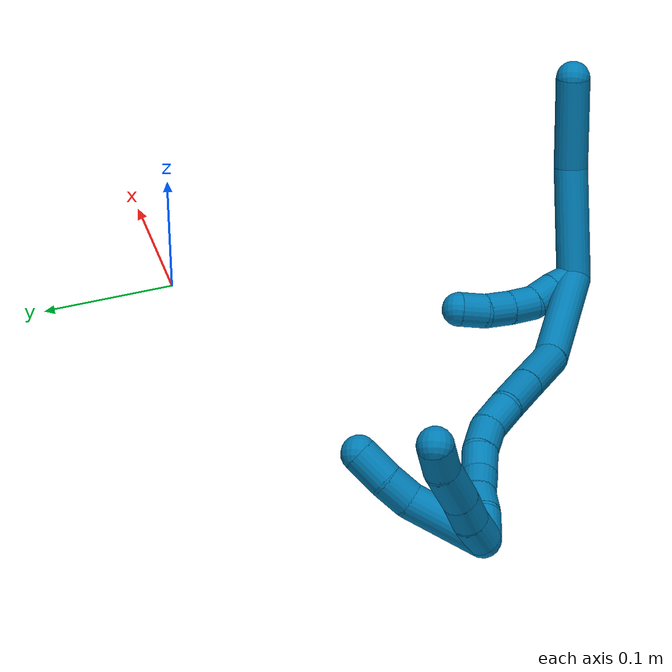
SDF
<sdf version="1.7">
 <world name="default">
  <model name="9">
   <static>0</static>
   <link name="9">
    <collision name="collision-cylinder-e_1_2_8">
     <pose>0.006923 0.013573 0.038186 -0.341517 0.16919 -0.029242</pose>
     <geometry><cylinder><radius>0.0125</radius><length>0.082226</length></cylinder></geometry>
     <surface>
      <friction><ode><mu>1.16</mu><mu2>1.16</mu2><slip1>0</slip1><slip2>0</slip2></ode></friction>
      <contact><ode><kp>1e+06</kp><kd>1</kd><max_vel>0</max_vel><min_depth>0.001</min_depth></ode></contact>
     </surface>
    </collision>
    <visual name="visual-cylinder-e_1_2_8">
     <pose>0.006923 0.013573 0.038186 -0.341517 0.16919 -0.029242</pose>
     <geometry><cylinder><radius>0.0125</radius><length>0.082226</length></cylinder></geometry>
     <material><ambient>0 0.490196 0.709804 1</ambient></material>
    </visual>
    <collision name="collision-cylinder-e_2_8_6">
     <pose>0.019879 0.045821 0.103996 -0.594453 0.178996 -0.05496</pose>
     <geometry><cylinder><radius>0.0125</radius><length>0.067774</length></cylinder></geometry>
     <surface>
      <friction><ode><mu>1.16</mu><mu2>1.16</mu2><slip1>0</slip1><slip2>0</slip2></ode></friction>
      <contact><ode><kp>1e+06</kp><kd>1</kd><max_vel>0</max_vel><min_depth>0.001</min_depth></ode></contact>
     </surface>
    </collision>
    <visual name="visual-cylinder-e_2_8_6">
     <pose>0.019879 0.045821 0.103996 -0.594453 0.178996 -0.05496</pose>
     <geometry><cylinder><radius>0.0125</radius><length>0.067774</length></cylinder></geometry>
     <material><ambient>0 0.490196 0.709804 1</ambient></material>
    </visual>
    <collision name="collision-cylinder-e_1_2_9">
     <pose>0.008295 0.000952 -0.005504 -2.97029 0.978163 -2.82168</pose>
     <geometry><cylinder><radius>0.0125</radius><length>0.02</length></cylinder></geometry>
     <surface>
      <friction><ode><mu>1.16</mu><mu2>1.16</mu2><slip1>0</slip1><slip2>0</slip2></ode></friction>
      <contact><ode><kp>1e+06</kp><kd>1</kd><max_vel>0</max_vel><min_depth>0.001</min_depth></ode></contact>
     </surface>
    </collision>
    <visual name="visual-cylinder-e_1_2_9">
     <pose>0.008295 0.000952 -0.005504 -2.97029 0.978163 -2.82168</pose>
     <geometry><cylinder><radius>0.0125</radius><length>0.02</length></cylinder></geometry>
     <material><ambient>0 0.490196 0.709804 1</ambient></material>
    </visual>
    <collision name="collision-cylinder-e_2_9_10">
     <pose>0.024042 0.003825 -0.017393 -2.84936 0.840907 -2.50563</pose>
     <geometry><cylinder><radius>0.0125</radius><length>0.02</length></cylinder></geometry>
     <surface>
      <friction><ode><mu>1.16</mu><mu2>1.16</mu2><slip1>0</slip1><slip2>0</slip2></ode></friction>
      <contact><ode><kp>1e+06</kp><kd>1</kd><max_vel>0</max_vel><min_depth>0.001</min_depth></ode></contact>
     </surface>
    </collision>
    <visual name="visual-cylinder-e_2_9_10">
     <pose>0.024042 0.003825 -0.017393 -2.84936 0.840907 -2.50563</pose>
     <geometry><cylinder><radius>0.0125</radius><length>0.02</length></cylinder></geometry>
     <material><ambient>0 0.490196 0.709804 1</ambient></material>
    </visual>
    <collision name="collision-cylinder-e_3_10_11">
     <pose>0.040766 0.007119 -0.027264 -2.76646 1.18678 -2.59298</pose>
     <geometry><cylinder><radius>0.0125</radius><length>0.02</length></cylinder></geometry>
     <surface>
      <friction><ode><mu>1.16</mu><mu2>1.16</mu2><slip1>0</slip1><slip2>0</slip2></ode></friction>
      <contact><ode><kp>1e+06</kp><kd>1</kd><max_vel>0</max_vel><min_depth>0.001</min_depth></ode></contact>
     </surface>
    </collision>
    <visual name="visual-cylinder-e_3_10_11">
     <pose>0.040766 0.007119 -0.027264 -2.76646 1.18678 -2.59298</pose>
     <geometry><cylinder><radius>0.0125</radius><length>0.02</length></cylinder></geometry>
     <material><ambient>0 0.490196 0.709804 1</ambient></material>
    </visual>
    <collision name="collision-cylinder-e_4_11_12">
     <pose>0.059422 0.010431 -0.03361 -2.54579 1.21798 -2.31216</pose>
     <geometry><cylinder><radius>0.0125</radius><length>0.02</length></cylinder></geometry>
     <surface>
      <friction><ode><mu>1.16</mu><mu2>1.16</mu2><slip1>0</slip1><slip2>0</slip2></ode></friction>
      <contact><ode><kp>1e+06</kp><kd>1</kd><max_vel>0</max_vel><min_depth>0.001</min_depth></ode></contact>
     </surface>
    </collision>
    <visual name="visual-cylinder-e_4_11_12">
     <pose>0.059422 0.010431 -0.03361 -2.54579 1.21798 -2.31216</pose>
     <geometry><cylinder><radius>0.0125</radius><length>0.02</length></cylinder></geometry>
     <material><ambient>0 0.490196 0.709804 1</ambient></material>
    </visual>
    <collision name="collision-cylinder-e_5_12_5">
     <pose>0.078749 0.013166 -0.03718 -2.29946 1.46389 -2.21673</pose>
     <geometry><cylinder><radius>0.0125</radius><length>0.02</length></cylinder></geometry>
     <surface>
      <friction><ode><mu>1.16</mu><mu2>1.16</mu2><slip1>0</slip1><slip2>0</slip2></ode></friction>
      <contact><ode><kp>1e+06</kp><kd>1</kd><max_vel>0</max_vel><min_depth>0.001</min_depth></ode></contact>
     </surface>
    </collision>
    <visual name="visual-cylinder-e_5_12_5">
     <pose>0.078749 0.013166 -0.03718 -2.29946 1.46389 -2.21673</pose>
     <geometry><cylinder><radius>0.0125</radius><length>0.02</length></cylinder></geometry>
     <material><ambient>0 0.490196 0.709804 1</ambient></material>
    </visual>
    <collision name="collision-cylinder-e_1_2_13">
     <pose>0.014127 0.024439 -0.037908 -2.56896 0.303538 -0.958253</pose>
     <geometry><cylinder><radius>0.0125</radius><length>0.094528</length></cylinder></geometry>
     <surface>
      <friction><ode><mu>1.16</mu><mu2>1.16</mu2><slip1>0</slip1><slip2>0</slip2></ode></friction>
      <contact><ode><kp>1e+06</kp><kd>1</kd><max_vel>0</max_vel><min_depth>0.001</min_depth></ode></contact>
     </surface>
    </collision>
    <visual name="visual-cylinder-e_1_2_13">
     <pose>0.014127 0.024439 -0.037908 -2.56896 0.303538 -0.958253</pose>
     <geometry><cylinder><radius>0.0125</radius><length>0.094528</length></cylinder></geometry>
     <material><ambient>0 0.490196 0.709804 1</ambient></material>
    </visual>
    <collision name="collision-cylinder-e_2_13_14">
     <pose>0.040025 0.060736 -0.089623 -2.432 0.574095 -1.34559</pose>
     <geometry><cylinder><radius>0.0125</radius><length>0.043349</length></cylinder></geometry>
     <surface>
      <friction><ode><mu>1.16</mu><mu2>1.16</mu2><slip1>0</slip1><slip2>0</slip2></ode></friction>
      <contact><ode><kp>1e+06</kp><kd>1</kd><max_vel>0</max_vel><min_depth>0.001</min_depth></ode></contact>
     </surface>
    </collision>
    <visual name="visual-cylinder-e_2_13_14">
     <pose>0.040025 0.060736 -0.089623 -2.432 0.574095 -1.34559</pose>
     <geometry><cylinder><radius>0.0125</radius><length>0.043349</length></cylinder></geometry>
     <material><ambient>0 0.490196 0.709804 1</ambient></material>
    </visual>
    <collision name="collision-cylinder-e_3_14_15">
     <pose>0.060844 0.081546 -0.114246 -2.4502 0.572454 -1.37024</pose>
     <geometry><cylinder><radius>0.0125</radius><length>0.033406</length></cylinder></geometry>
     <surface>
      <friction><ode><mu>1.16</mu><mu2>1.16</mu2><slip1>0</slip1><slip2>0</slip2></ode></friction>
      <contact><ode><kp>1e+06</kp><kd>1</kd><max_vel>0</max_vel><min_depth>0.001</min_depth></ode></contact>
     </surface>
    </collision>
    <visual name="visual-cylinder-e_3_14_15">
     <pose>0.060844 0.081546 -0.114246 -2.4502 0.572454 -1.37024</pose>
     <geometry><cylinder><radius>0.0125</radius><length>0.033406</length></cylinder></geometry>
     <material><ambient>0 0.490196 0.709804 1</ambient></material>
    </visual>
    <collision name="collision-cylinder-e_4_15_16">
     <pose>0.076799 0.094214 -0.134164 -2.75399 0.612428 -2.03047</pose>
     <geometry><cylinder><radius>0.0125</radius><length>0.024031</length></cylinder></geometry>
     <surface>
      <friction><ode><mu>1.16</mu><mu2>1.16</mu2><slip1>0</slip1><slip2>0</slip2></ode></friction>
      <contact><ode><kp>1e+06</kp><kd>1</kd><max_vel>0</max_vel><min_depth>0.001</min_depth></ode></contact>
     </surface>
    </collision>
    <visual name="visual-cylinder-e_4_15_16">
     <pose>0.076799 0.094214 -0.134164 -2.75399 0.612428 -2.03047</pose>
     <geometry><cylinder><radius>0.0125</radius><length>0.024031</length></cylinder></geometry>
     <material><ambient>0 0.490196 0.709804 1</ambient></material>
    </visual>
    <collision name="collision-cylinder-e_5_16_17">
     <pose>0.087258 0.103508 -0.152882 -2.61592 0.309247 -1.05012</pose>
     <geometry><cylinder><radius>0.0125</radius><length>0.023341</length></cylinder></geometry>
     <surface>
      <friction><ode><mu>1.16</mu><mu2>1.16</mu2><slip1>0</slip1><slip2>0</slip2></ode></friction>
      <contact><ode><kp>1e+06</kp><kd>1</kd><max_vel>0</max_vel><min_depth>0.001</min_depth></ode></contact>
     </surface>
    </collision>
    <visual name="visual-cylinder-e_5_16_17">
     <pose>0.087258 0.103508 -0.152882 -2.61592 0.309247 -1.05012</pose>
     <geometry><cylinder><radius>0.0125</radius><length>0.023341</length></cylinder></geometry>
     <material><ambient>0 0.490196 0.709804 1</ambient></material>
    </visual>
    <collision name="collision-cylinder-e_6_17_18">
     <pose>0.091575 0.11313 -0.17174 -2.72919 0.075758 -0.35846</pose>
     <geometry><cylinder><radius>0.0125</radius><length>0.020233</length></cylinder></geometry>
     <surface>
      <friction><ode><mu>1.16</mu><mu2>1.16</mu2><slip1>0</slip1><slip2>0</slip2></ode></friction>
      <contact><ode><kp>1e+06</kp><kd>1</kd><max_vel>0</max_vel><min_depth>0.001</min_depth></ode></contact>
     </surface>
    </collision>
    <visual name="visual-cylinder-e_6_17_18">
     <pose>0.091575 0.11313 -0.17174 -2.72919 0.075758 -0.35846</pose>
     <geometry><cylinder><radius>0.0125</radius><length>0.020233</length></cylinder></geometry>
     <material><ambient>0 0.490196 0.709804 1</ambient></material>
    </visual>
    <collision name="collision-cylinder-e_7_18_19">
     <pose>0.094092 0.123373 -0.188817 -2.47216 0.173442 -0.489893</pose>
     <geometry><cylinder><radius>0.0125</radius><length>0.020288</length></cylinder></geometry>
     <surface>
      <friction><ode><mu>1.16</mu><mu2>1.16</mu2><slip1>0</slip1><slip2>0</slip2></ode></friction>
      <contact><ode><kp>1e+06</kp><kd>1</kd><max_vel>0</max_vel><min_depth>0.001</min_depth></ode></contact>
     </surface>
    </collision>
    <visual name="visual-cylinder-e_7_18_19">
     <pose>0.094092 0.123373 -0.188817 -2.47216 0.173442 -0.489893</pose>
     <geometry><cylinder><radius>0.0125</radius><length>0.020288</length></cylinder></geometry>
     <material><ambient>0 0.490196 0.709804 1</ambient></material>
    </visual>
    <collision name="collision-cylinder-e_8_19_20">
     <pose>0.095492 0.136011 -0.204583 -2.45974 -0.034288 0.096581</pose>
     <geometry><cylinder><radius>0.0125</radius><length>0.020442</length></cylinder></geometry>
     <surface>
      <friction><ode><mu>1.16</mu><mu2>1.16</mu2><slip1>0</slip1><slip2>0</slip2></ode></friction>
      <contact><ode><kp>1e+06</kp><kd>1</kd><max_vel>0</max_vel><min_depth>0.001</min_depth></ode></contact>
     </surface>
    </collision>
    <visual name="visual-cylinder-e_8_19_20">
     <pose>0.095492 0.136011 -0.204583 -2.45974 -0.034288 0.096581</pose>
     <geometry><cylinder><radius>0.0125</radius><length>0.020442</length></cylinder></geometry>
     <material><ambient>0 0.490196 0.709804 1</ambient></material>
    </visual>
    <collision name="collision-cylinder-e_9_20_1">
     <pose>0.09562 0.147076 -0.221582 -2.66985 0.046992 -0.194935</pose>
     <geometry><cylinder><radius>0.0125</radius><length>0.020383</length></cylinder></geometry>
     <surface>
      <friction><ode><mu>1.16</mu><mu2>1.16</mu2><slip1>0</slip1><slip2>0</slip2></ode></friction>
      <contact><ode><kp>1e+06</kp><kd>1</kd><max_vel>0</max_vel><min_depth>0.001</min_depth></ode></contact>
     </surface>
    </collision>
    <visual name="visual-cylinder-e_9_20_1">
     <pose>0.09562 0.147076 -0.221582 -2.66985 0.046992 -0.194935</pose>
     <geometry><cylinder><radius>0.0125</radius><length>0.020383</length></cylinder></geometry>
     <material><ambient>0 0.490196 0.709804 1</ambient></material>
    </visual>
    <collision name="collision-cylinder-e_1_1_21">
     <pose>0.102735 0.1594 -0.226496 -1.07596 0.64899 -0.39617</pose>
     <geometry><cylinder><radius>0.0125</radius><length>0.02196</length></cylinder></geometry>
     <surface>
      <friction><ode><mu>1.16</mu><mu2>1.16</mu2><slip1>0</slip1><slip2>0</slip2></ode></friction>
      <contact><ode><kp>1e+06</kp><kd>1</kd><max_vel>0</max_vel><min_depth>0.001</min_depth></ode></contact>
     </surface>
    </collision>
    <visual name="visual-cylinder-e_1_1_21">
     <pose>0.102735 0.1594 -0.226496 -1.07596 0.64899 -0.39617</pose>
     <geometry><cylinder><radius>0.0125</radius><length>0.02196</length></cylinder></geometry>
     <material><ambient>0 0.490196 0.709804 1</ambient></material>
    </visual>
    <collision name="collision-cylinder-e_2_21_22">
     <pose>0.115065 0.174874 -0.217394 -1.00404 0.553426 -0.309299</pose>
     <geometry><cylinder><radius>0.0125</radius><length>0.021668</length></cylinder></geometry>
     <surface>
      <friction><ode><mu>1.16</mu><mu2>1.16</mu2><slip1>0</slip1><slip2>0</slip2></ode></friction>
      <contact><ode><kp>1e+06</kp><kd>1</kd><max_vel>0</max_vel><min_depth>0.001</min_depth></ode></contact>
     </surface>
    </collision>
    <visual name="visual-cylinder-e_2_21_22">
     <pose>0.115065 0.174874 -0.217394 -1.00404 0.553426 -0.309299</pose>
     <geometry><cylinder><radius>0.0125</radius><length>0.021668</length></cylinder></geometry>
     <material><ambient>0 0.490196 0.709804 1</ambient></material>
    </visual>
    <collision name="collision-cylinder-e_3_22_23">
     <pose>0.130203 0.194901 -0.206049 -1.08962 0.599435 -0.370243</pose>
     <geometry><cylinder><radius>0.0125</radius><length>0.033477</length></cylinder></geometry>
     <surface>
      <friction><ode><mu>1.16</mu><mu2>1.16</mu2><slip1>0</slip1><slip2>0</slip2></ode></friction>
      <contact><ode><kp>1e+06</kp><kd>1</kd><max_vel>0</max_vel><min_depth>0.001</min_depth></ode></contact>
     </surface>
    </collision>
    <visual name="visual-cylinder-e_3_22_23">
     <pose>0.130203 0.194901 -0.206049 -1.08962 0.599435 -0.370243</pose>
     <geometry><cylinder><radius>0.0125</radius><length>0.033477</length></cylinder></geometry>
     <material><ambient>0 0.490196 0.709804 1</ambient></material>
    </visual>
    <collision name="collision-cylinder-e_4_23_4">
     <pose>0.144337 0.215859 -0.193888 -0.985966 0.422162 -0.229217</pose>
     <geometry><cylinder><radius>0.0125</radius><length>0.022894</length></cylinder></geometry>
     <surface>
      <friction><ode><mu>1.16</mu><mu2>1.16</mu2><slip1>0</slip1><slip2>0</slip2></ode></friction>
      <contact><ode><kp>1e+06</kp><kd>1</kd><max_vel>0</max_vel><min_depth>0.001</min_depth></ode></contact>
     </surface>
    </collision>
    <visual name="visual-cylinder-e_4_23_4">
     <pose>0.144337 0.215859 -0.193888 -0.985966 0.422162 -0.229217</pose>
     <geometry><cylinder><radius>0.0125</radius><length>0.022894</length></cylinder></geometry>
     <material><ambient>0 0.490196 0.709804 1</ambient></material>
    </visual>
    <collision name="collision-cylinder-e_1_1_24">
     <pose>0.120976 0.14898 -0.219838 0.24665 1.14945 0.160216</pose>
     <geometry><cylinder><radius>0.0125</radius><length>0.054524</length></cylinder></geometry>
     <surface>
      <friction><ode><mu>1.16</mu><mu2>1.16</mu2><slip1>0</slip1><slip2>0</slip2></ode></friction>
      <contact><ode><kp>1e+06</kp><kd>1</kd><max_vel>0</max_vel><min_depth>0.001</min_depth></ode></contact>
     </surface>
    </collision>
    <visual name="visual-cylinder-e_1_1_24">
     <pose>0.120976 0.14898 -0.219838 0.24665 1.14945 0.160216</pose>
     <geometry><cylinder><radius>0.0125</radius><length>0.054524</length></cylinder></geometry>
     <material><ambient>0 0.490196 0.709804 1</ambient></material>
    </visual>
    <collision name="collision-cylinder-e_2_24_25">
     <pose>0.154498 0.147247 -0.203381 -0.173602 0.985319 -0.093358</pose>
     <geometry><cylinder><radius>0.0125</radius><length>0.020743</length></cylinder></geometry>
     <surface>
      <friction><ode><mu>1.16</mu><mu2>1.16</mu2><slip1>0</slip1><slip2>0</slip2></ode></friction>
      <contact><ode><kp>1e+06</kp><kd>1</kd><max_vel>0</max_vel><min_depth>0.001</min_depth></ode></contact>
     </surface>
    </collision>
    <visual name="visual-cylinder-e_2_24_25">
     <pose>0.154498 0.147247 -0.203381 -0.173602 0.985319 -0.093358</pose>
     <geometry><cylinder><radius>0.0125</radius><length>0.020743</length></cylinder></geometry>
     <material><ambient>0 0.490196 0.709804 1</ambient></material>
    </visual>
    <collision name="collision-cylinder-e_3_25_3">
     <pose>0.17265 0.148143 -0.189828 0.01189 0.87694 0.005576</pose>
     <geometry><cylinder><radius>0.0125</radius><length>0.024733</length></cylinder></geometry>
     <surface>
      <friction><ode><mu>1.16</mu><mu2>1.16</mu2><slip1>0</slip1><slip2>0</slip2></ode></friction>
      <contact><ode><kp>1e+06</kp><kd>1</kd><max_vel>0</max_vel><min_depth>0.001</min_depth></ode></contact>
     </surface>
    </collision>
    <visual name="visual-cylinder-e_3_25_3">
     <pose>0.17265 0.148143 -0.189828 0.01189 0.87694 0.005576</pose>
     <geometry><cylinder><radius>0.0125</radius><length>0.024733</length></cylinder></geometry>
     <material><ambient>0 0.490196 0.709804 1</ambient></material>
    </visual>
    <collision name="collision-sphere-3">
     <pose>0.182157 0.148049 -0.18192 0 -0 0</pose>
     <geometry><sphere><radius>0.0125</radius></sphere></geometry>
     <surface>
      <friction><ode><mu>1.16</mu><mu2>1.16</mu2><slip1>0</slip1><slip2>0</slip2></ode></friction>
      <contact><ode><kp>1e+06</kp><kd>1</kd><max_vel>0</max_vel><min_depth>0.001</min_depth></ode></contact>
     </surface>
    </collision>
    <visual name="visual-sphere-3">
     <pose>0.182157 0.148049 -0.18192 0 -0 0</pose>
     <geometry><sphere><radius>0.0125</radius></sphere></geometry>
     <material><ambient>0 0.490196 0.709804 1</ambient></material>
    </visual>
    <collision name="collision-sphere-25">
     <pose>0.163143 0.148237 -0.197735 0 -0 0</pose>
     <geometry><sphere><radius>0.0125</radius></sphere></geometry>
     <surface>
      <friction><ode><mu>1.16</mu><mu2>1.16</mu2><slip1>0</slip1><slip2>0</slip2></ode></friction>
      <contact><ode><kp>1e+06</kp><kd>1</kd><max_vel>0</max_vel><min_depth>0.001</min_depth></ode></contact>
     </surface>
    </collision>
    <visual name="visual-sphere-25">
     <pose>0.163143 0.148237 -0.197735 0 -0 0</pose>
     <geometry><sphere><radius>0.0125</radius></sphere></geometry>
     <material><ambient>0 0.490196 0.709804 1</ambient></material>
    </visual>
    <collision name="collision-sphere-24">
     <pose>0.145854 0.146257 -0.209026 0 -0 0</pose>
     <geometry><sphere><radius>0.0125</radius></sphere></geometry>
     <surface>
      <friction><ode><mu>1.16</mu><mu2>1.16</mu2><slip1>0</slip1><slip2>0</slip2></ode></friction>
      <contact><ode><kp>1e+06</kp><kd>1</kd><max_vel>0</max_vel><min_depth>0.001</min_depth></ode></contact>
     </surface>
    </collision>
    <visual name="visual-sphere-24">
     <pose>0.145854 0.146257 -0.209026 0 -0 0</pose>
     <geometry><sphere><radius>0.0125</radius></sphere></geometry>
     <material><ambient>0 0.490196 0.709804 1</ambient></material>
    </visual>
    <collision name="collision-sphere-4">
     <pose>0.149028 0.224566 -0.188123 0 -0 0</pose>
     <geometry><sphere><radius>0.0125</radius></sphere></geometry>
     <surface>
      <friction><ode><mu>1.16</mu><mu2>1.16</mu2><slip1>0</slip1><slip2>0</slip2></ode></friction>
      <contact><ode><kp>1e+06</kp><kd>1</kd><max_vel>0</max_vel><min_depth>0.001</min_depth></ode></contact>
     </surface>
    </collision>
    <visual name="visual-sphere-4">
     <pose>0.149028 0.224566 -0.188123 0 -0 0</pose>
     <geometry><sphere><radius>0.0125</radius></sphere></geometry>
     <material><ambient>0 0.490196 0.709804 1</ambient></material>
    </visual>
    <collision name="collision-sphere-23">
     <pose>0.139647 0.207152 -0.199652 0 -0 0</pose>
     <geometry><sphere><radius>0.0125</radius></sphere></geometry>
     <surface>
      <friction><ode><mu>1.16</mu><mu2>1.16</mu2><slip1>0</slip1><slip2>0</slip2></ode></friction>
      <contact><ode><kp>1e+06</kp><kd>1</kd><max_vel>0</max_vel><min_depth>0.001</min_depth></ode></contact>
     </surface>
    </collision>
    <visual name="visual-sphere-23">
     <pose>0.139647 0.207152 -0.199652 0 -0 0</pose>
     <geometry><sphere><radius>0.0125</radius></sphere></geometry>
     <material><ambient>0 0.490196 0.709804 1</ambient></material>
    </visual>
    <collision name="collision-sphere-22">
     <pose>0.12076 0.18265 -0.212445 0 -0 0</pose>
     <geometry><sphere><radius>0.0125</radius></sphere></geometry>
     <surface>
      <friction><ode><mu>1.16</mu><mu2>1.16</mu2><slip1>0</slip1><slip2>0</slip2></ode></friction>
      <contact><ode><kp>1e+06</kp><kd>1</kd><max_vel>0</max_vel><min_depth>0.001</min_depth></ode></contact>
     </surface>
    </collision>
    <visual name="visual-sphere-22">
     <pose>0.12076 0.18265 -0.212445 0 -0 0</pose>
     <geometry><sphere><radius>0.0125</radius></sphere></geometry>
     <material><ambient>0 0.490196 0.709804 1</ambient></material>
    </visual>
    <collision name="collision-sphere-21">
     <pose>0.109371 0.167098 -0.222342 0 -0 0</pose>
     <geometry><sphere><radius>0.0125</radius></sphere></geometry>
     <surface>
      <friction><ode><mu>1.16</mu><mu2>1.16</mu2><slip1>0</slip1><slip2>0</slip2></ode></friction>
      <contact><ode><kp>1e+06</kp><kd>1</kd><max_vel>0</max_vel><min_depth>0.001</min_depth></ode></contact>
     </surface>
    </collision>
    <visual name="visual-sphere-21">
     <pose>0.109371 0.167098 -0.222342 0 -0 0</pose>
     <geometry><sphere><radius>0.0125</radius></sphere></geometry>
     <material><ambient>0 0.490196 0.709804 1</ambient></material>
    </visual>
    <collision name="collision-sphere-1">
     <pose>0.096099 0.151702 -0.23065 0 -0 0</pose>
     <geometry><sphere><radius>0.0125</radius></sphere></geometry>
     <surface>
      <friction><ode><mu>1.16</mu><mu2>1.16</mu2><slip1>0</slip1><slip2>0</slip2></ode></friction>
      <contact><ode><kp>1e+06</kp><kd>1</kd><max_vel>0</max_vel><min_depth>0.001</min_depth></ode></contact>
     </surface>
    </collision>
    <visual name="visual-sphere-1">
     <pose>0.096099 0.151702 -0.23065 0 -0 0</pose>
     <geometry><sphere><radius>0.0125</radius></sphere></geometry>
     <material><ambient>0 0.490196 0.709804 1</ambient></material>
    </visual>
    <collision name="collision-sphere-11">
     <pose>0.050038 0.008492 -0.03075 0 -0 0</pose>
     <geometry><sphere><radius>0.0125</radius></sphere></geometry>
     <surface>
      <friction><ode><mu>1.16</mu><mu2>1.16</mu2><slip1>0</slip1><slip2>0</slip2></ode></friction>
      <contact><ode><kp>1e+06</kp><kd>1</kd><max_vel>0</max_vel><min_depth>0.001</min_depth></ode></contact>
     </surface>
    </collision>
    <visual name="visual-sphere-11">
     <pose>0.050038 0.008492 -0.03075 0 -0 0</pose>
     <geometry><sphere><radius>0.0125</radius></sphere></geometry>
     <material><ambient>0 0.490196 0.709804 1</ambient></material>
    </visual>
    <collision name="collision-sphere-10">
     <pose>0.031494 0.005746 -0.023778 0 -0 0</pose>
     <geometry><sphere><radius>0.0125</radius></sphere></geometry>
     <surface>
      <friction><ode><mu>1.16</mu><mu2>1.16</mu2><slip1>0</slip1><slip2>0</slip2></ode></friction>
      <contact><ode><kp>1e+06</kp><kd>1</kd><max_vel>0</max_vel><min_depth>0.001</min_depth></ode></contact>
     </surface>
    </collision>
    <visual name="visual-sphere-10">
     <pose>0.031494 0.005746 -0.023778 0 -0 0</pose>
     <geometry><sphere><radius>0.0125</radius></sphere></geometry>
     <material><ambient>0 0.490196 0.709804 1</ambient></material>
    </visual>
    <collision name="collision-sphere-6">
     <pose>0.025912 0.064496 0.131622 0 -0 0</pose>
     <geometry><sphere><radius>0.0125</radius></sphere></geometry>
     <surface>
      <friction><ode><mu>1.16</mu><mu2>1.16</mu2><slip1>0</slip1><slip2>0</slip2></ode></friction>
      <contact><ode><kp>1e+06</kp><kd>1</kd><max_vel>0</max_vel><min_depth>0.001</min_depth></ode></contact>
     </surface>
    </collision>
    <visual name="visual-sphere-6">
     <pose>0.025912 0.064496 0.131622 0 -0 0</pose>
     <geometry><sphere><radius>0.0125</radius></sphere></geometry>
     <material><ambient>0 0.490196 0.709804 1</ambient></material>
    </visual>
    <collision name="collision-sphere-9">
     <pose>0.016589 0.001904 -0.011007 0 -0 0</pose>
     <geometry><sphere><radius>0.0125</radius></sphere></geometry>
     <surface>
      <friction><ode><mu>1.16</mu><mu2>1.16</mu2><slip1>0</slip1><slip2>0</slip2></ode></friction>
      <contact><ode><kp>1e+06</kp><kd>1</kd><max_vel>0</max_vel><min_depth>0.001</min_depth></ode></contact>
     </surface>
    </collision>
    <visual name="visual-sphere-9">
     <pose>0.016589 0.001904 -0.011007 0 -0 0</pose>
     <geometry><sphere><radius>0.0125</radius></sphere></geometry>
     <material><ambient>0 0.490196 0.709804 1</ambient></material>
    </visual>
    <collision name="collision-sphere-2">
     <geometry><sphere><radius>0.0125</radius></sphere></geometry>
     <surface>
      <friction><ode><mu>1.16</mu><mu2>1.16</mu2><slip1>0</slip1><slip2>0</slip2></ode></friction>
      <contact><ode><kp>1e+06</kp><kd>1</kd><max_vel>0</max_vel><min_depth>0.001</min_depth></ode></contact>
     </surface>
    </collision>
    <visual name="visual-sphere-2">
     <geometry><sphere><radius>0.0125</radius></sphere></geometry>
     <material><ambient>0 0.490196 0.709804 1</ambient></material>
    </visual>
    <collision name="collision-sphere-19">
     <pose>0.095842 0.129574 -0.196652 0 -0 0</pose>
     <geometry><sphere><radius>0.0125</radius></sphere></geometry>
     <surface>
      <friction><ode><mu>1.16</mu><mu2>1.16</mu2><slip1>0</slip1><slip2>0</slip2></ode></friction>
      <contact><ode><kp>1e+06</kp><kd>1</kd><max_vel>0</max_vel><min_depth>0.001</min_depth></ode></contact>
     </surface>
    </collision>
    <visual name="visual-sphere-19">
     <pose>0.095842 0.129574 -0.196652 0 -0 0</pose>
     <geometry><sphere><radius>0.0125</radius></sphere></geometry>
     <material><ambient>0 0.490196 0.709804 1</ambient></material>
    </visual>
    <collision name="collision-sphere-8">
     <pose>0.013846 0.027146 0.076371 0 -0 0</pose>
     <geometry><sphere><radius>0.0125</radius></sphere></geometry>
     <surface>
      <friction><ode><mu>1.16</mu><mu2>1.16</mu2><slip1>0</slip1><slip2>0</slip2></ode></friction>
      <contact><ode><kp>1e+06</kp><kd>1</kd><max_vel>0</max_vel><min_depth>0.001</min_depth></ode></contact>
     </surface>
    </collision>
    <visual name="visual-sphere-8">
     <pose>0.013846 0.027146 0.076371 0 -0 0</pose>
     <geometry><sphere><radius>0.0125</radius></sphere></geometry>
     <material><ambient>0 0.490196 0.709804 1</ambient></material>
    </visual>
    <collision name="collision-sphere-12">
     <pose>0.068806 0.01237 -0.03647 0 -0 0</pose>
     <geometry><sphere><radius>0.0125</radius></sphere></geometry>
     <surface>
      <friction><ode><mu>1.16</mu><mu2>1.16</mu2><slip1>0</slip1><slip2>0</slip2></ode></friction>
      <contact><ode><kp>1e+06</kp><kd>1</kd><max_vel>0</max_vel><min_depth>0.001</min_depth></ode></contact>
     </surface>
    </collision>
    <visual name="visual-sphere-12">
     <pose>0.068806 0.01237 -0.03647 0 -0 0</pose>
     <geometry><sphere><radius>0.0125</radius></sphere></geometry>
     <material><ambient>0 0.490196 0.709804 1</ambient></material>
    </visual>
    <collision name="collision-sphere-5">
     <pose>0.088692 0.013962 -0.037891 0 -0 0</pose>
     <geometry><sphere><radius>0.0125</radius></sphere></geometry>
     <surface>
      <friction><ode><mu>1.16</mu><mu2>1.16</mu2><slip1>0</slip1><slip2>0</slip2></ode></friction>
      <contact><ode><kp>1e+06</kp><kd>1</kd><max_vel>0</max_vel><min_depth>0.001</min_depth></ode></contact>
     </surface>
    </collision>
    <visual name="visual-sphere-5">
     <pose>0.088692 0.013962 -0.037891 0 -0 0</pose>
     <geometry><sphere><radius>0.0125</radius></sphere></geometry>
     <material><ambient>0 0.490196 0.709804 1</ambient></material>
    </visual>
    <collision name="collision-sphere-13">
     <pose>0.028254 0.048878 -0.075816 0 -0 0</pose>
     <geometry><sphere><radius>0.0125</radius></sphere></geometry>
     <surface>
      <friction><ode><mu>1.16</mu><mu2>1.16</mu2><slip1>0</slip1><slip2>0</slip2></ode></friction>
      <contact><ode><kp>1e+06</kp><kd>1</kd><max_vel>0</max_vel><min_depth>0.001</min_depth></ode></contact>
     </surface>
    </collision>
    <visual name="visual-sphere-13">
     <pose>0.028254 0.048878 -0.075816 0 -0 0</pose>
     <geometry><sphere><radius>0.0125</radius></sphere></geometry>
     <material><ambient>0 0.490196 0.709804 1</ambient></material>
    </visual>
    <collision name="collision-sphere-14">
     <pose>0.051796 0.072594 -0.10343 0 -0 0</pose>
     <geometry><sphere><radius>0.0125</radius></sphere></geometry>
     <surface>
      <friction><ode><mu>1.16</mu><mu2>1.16</mu2><slip1>0</slip1><slip2>0</slip2></ode></friction>
      <contact><ode><kp>1e+06</kp><kd>1</kd><max_vel>0</max_vel><min_depth>0.001</min_depth></ode></contact>
     </surface>
    </collision>
    <visual name="visual-sphere-14">
     <pose>0.051796 0.072594 -0.10343 0 -0 0</pose>
     <geometry><sphere><radius>0.0125</radius></sphere></geometry>
     <material><ambient>0 0.490196 0.709804 1</ambient></material>
    </visual>
    <collision name="collision-sphere-15">
     <pose>0.069892 0.090498 -0.125062 0 -0 0</pose>
     <geometry><sphere><radius>0.0125</radius></sphere></geometry>
     <surface>
      <friction><ode><mu>1.16</mu><mu2>1.16</mu2><slip1>0</slip1><slip2>0</slip2></ode></friction>
      <contact><ode><kp>1e+06</kp><kd>1</kd><max_vel>0</max_vel><min_depth>0.001</min_depth></ode></contact>
     </surface>
    </collision>
    <visual name="visual-sphere-15">
     <pose>0.069892 0.090498 -0.125062 0 -0 0</pose>
     <geometry><sphere><radius>0.0125</radius></sphere></geometry>
     <material><ambient>0 0.490196 0.709804 1</ambient></material>
    </visual>
    <collision name="collision-sphere-16">
     <pose>0.083706 0.09793 -0.143266 0 -0 0</pose>
     <geometry><sphere><radius>0.0125</radius></sphere></geometry>
     <surface>
      <friction><ode><mu>1.16</mu><mu2>1.16</mu2><slip1>0</slip1><slip2>0</slip2></ode></friction>
      <contact><ode><kp>1e+06</kp><kd>1</kd><max_vel>0</max_vel><min_depth>0.001</min_depth></ode></contact>
     </surface>
    </collision>
    <visual name="visual-sphere-16">
     <pose>0.083706 0.09793 -0.143266 0 -0 0</pose>
     <geometry><sphere><radius>0.0125</radius></sphere></geometry>
     <material><ambient>0 0.490196 0.709804 1</ambient></material>
    </visual>
    <collision name="collision-sphere-17">
     <pose>0.09081 0.109087 -0.162498 0 -0 0</pose>
     <geometry><sphere><radius>0.0125</radius></sphere></geometry>
     <surface>
      <friction><ode><mu>1.16</mu><mu2>1.16</mu2><slip1>0</slip1><slip2>0</slip2></ode></friction>
      <contact><ode><kp>1e+06</kp><kd>1</kd><max_vel>0</max_vel><min_depth>0.001</min_depth></ode></contact>
     </surface>
    </collision>
    <visual name="visual-sphere-17">
     <pose>0.09081 0.109087 -0.162498 0 -0 0</pose>
     <geometry><sphere><radius>0.0125</radius></sphere></geometry>
     <material><ambient>0 0.490196 0.709804 1</ambient></material>
    </visual>
    <collision name="collision-sphere-18">
     <pose>0.092341 0.117173 -0.180982 0 -0 0</pose>
     <geometry><sphere><radius>0.0125</radius></sphere></geometry>
     <surface>
      <friction><ode><mu>1.16</mu><mu2>1.16</mu2><slip1>0</slip1><slip2>0</slip2></ode></friction>
      <contact><ode><kp>1e+06</kp><kd>1</kd><max_vel>0</max_vel><min_depth>0.001</min_depth></ode></contact>
     </surface>
    </collision>
    <visual name="visual-sphere-18">
     <pose>0.092341 0.117173 -0.180982 0 -0 0</pose>
     <geometry><sphere><radius>0.0125</radius></sphere></geometry>
     <material><ambient>0 0.490196 0.709804 1</ambient></material>
    </visual>
    <collision name="collision-sphere-20">
     <pose>0.095141 0.142449 -0.212514 0 -0 0</pose>
     <geometry><sphere><radius>0.0125</radius></sphere></geometry>
     <surface>
      <friction><ode><mu>1.16</mu><mu2>1.16</mu2><slip1>0</slip1><slip2>0</slip2></ode></friction>
      <contact><ode><kp>1e+06</kp><kd>1</kd><max_vel>0</max_vel><min_depth>0.001</min_depth></ode></contact>
     </surface>
    </collision>
    <visual name="visual-sphere-20">
     <pose>0.095141 0.142449 -0.212514 0 -0 0</pose>
     <geometry><sphere><radius>0.0125</radius></sphere></geometry>
     <material><ambient>0 0.490196 0.709804 1</ambient></material>
    </visual>
    <inertial>
     <pose>0.065698 0.081928 -0.090978 0 -0 0</pose>
     <mass>0.75</mass>
     <inertia>
      <ixx>8.8e-05</ixx>
      <ixy>0</ixy>
      <ixz>0</ixz>
      <iyy>1.9e-05</iyy>
      <iyz>0</iyz>
      <izz>-0.000166</izz>
     </inertia>
    </inertial>
   </link>
   <pose>-0.143778 -0.269251 0.052044 0.95334 -0.204473 1.31669</pose>
  </model>
 </world>
</sdf>
